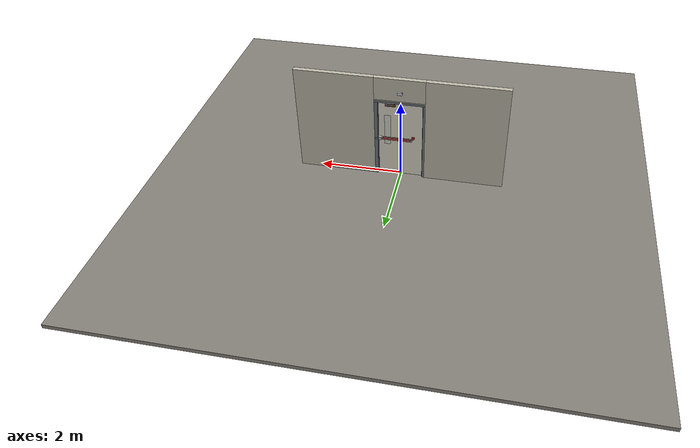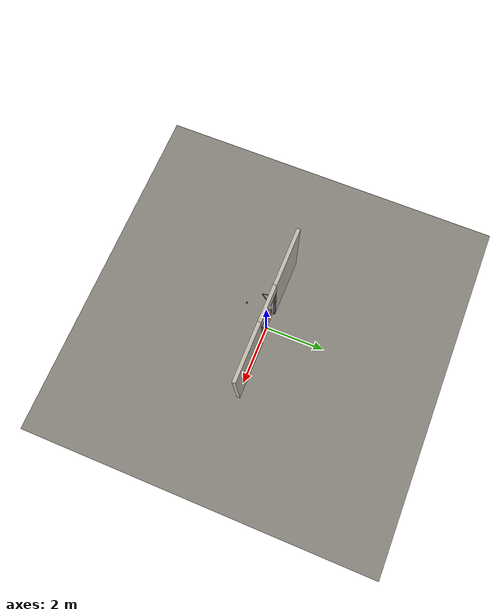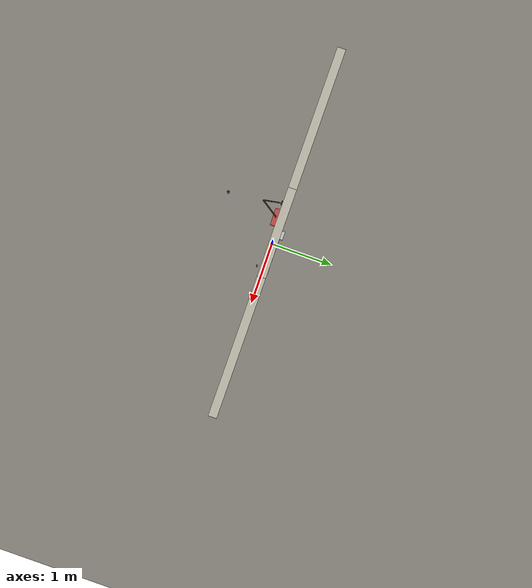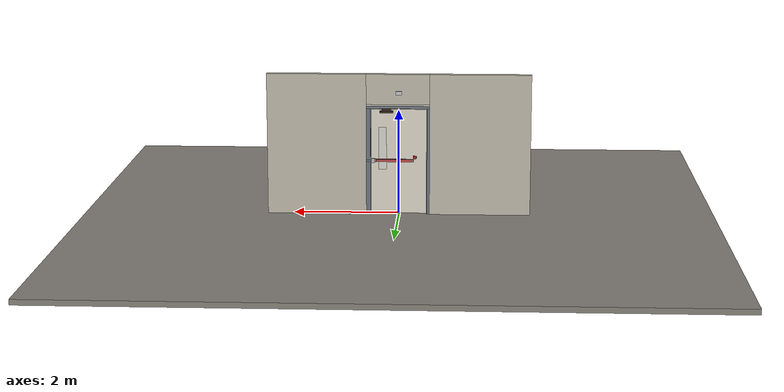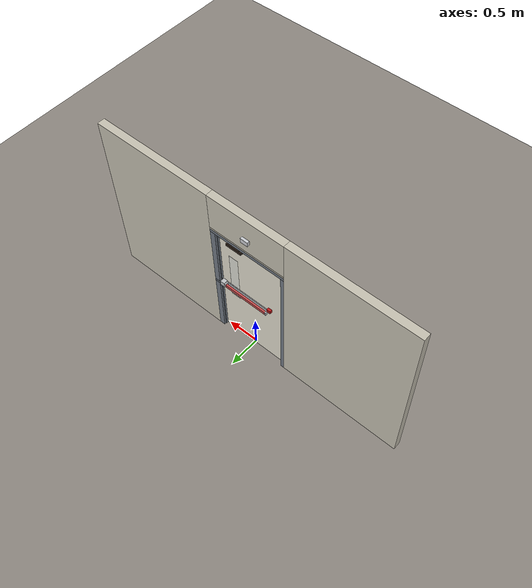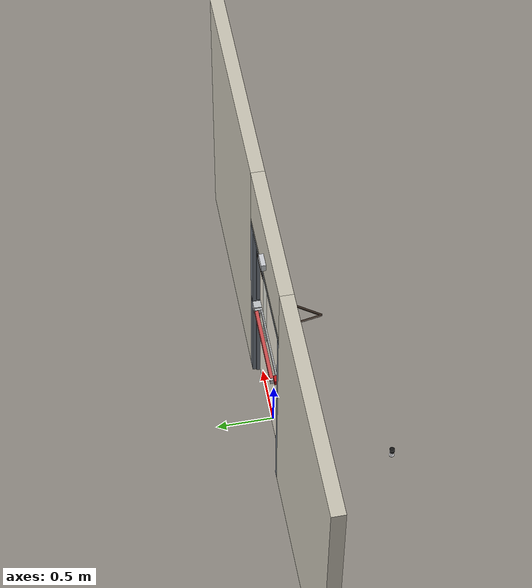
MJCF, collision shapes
<?xml version="1.0" ?>
<mujoco model="db0328_swing_single_full">
  <compiler angle="radian" meshdir="../../hardware" texturedir="../../textures" autolimits="true" inertiafromgeom="false"/>
  <option timestep="0.002" integrator="implicitfast" cone="elliptic" impratio="10" noslip_iterations="3">
    <flag multiccd="enable"/>
  </option>
  <size memory="16M"/>
  <default>
    <geom condim="4" solref="0.005 1" solimp="0.95 0.99 0.001"/>
    <joint solreflimit="0.005 1" solimplimit="0.95 0.99 0.001"/>
    <tendon solreflimit="0.005 1"/>
    <equality solref="0.002 1"/>
  </default>
  <visual>
    <headlight ambient="0.4 0.4 0.4" diffuse="0.7 0.7 0.7" specular="0.2 0.2 0.2"/>
    <quality shadowsize="4096"/>
    <map znear="0.01" zfar="60"/>
  </visual>
  <asset>
    <mesh name="closer_body_b226fdb10b" file="closer_body_b226fdb10b.obj"/>
    <mesh name="exit_sign_a6449bfa2c" file="exit_sign_a6449bfa2c.obj"/>
    <mesh name="hinge_e22b26c0c1" file="hinge_e22b26c0c1.obj"/>
    <mesh name="hinge_jamb_e1d088f8dc" file="hinge_jamb_e1d088f8dc.obj"/>
    <mesh name="pull_f8d79d6331" file="pull_f8d79d6331.obj"/>
    <mesh name="touchbar_pad_53c3bea3f4" file="touchbar_pad_53c3bea3f4.obj"/>
    <material name="mat_floor" rgba="0.55 0.53 0.5 1" specular="0.2" shininess="0.15" reflectance="0"/>
    <material name="mat_wall" rgba="0.78 0.76 0.7 1" specular="0.2" shininess="0.1" reflectance="0"/>
    <material name="mat_leaf" rgba="0.9 0.88 0.82 1" specular="0.23" shininess="0.64" reflectance="0.02"/>
    <material name="mat_glass" rgba="0.85 0.92 0.95 0.25" specular="0.2" shininess="0.95" reflectance="0.1"/>
    <material name="mat_hinge" rgba="0.65 0.66 0.68 1" specular="0.74" shininess="0.5" reflectance="0.36"/>
    <material name="mat_op_stainless" rgba="0.75 0.76 0.77 1" specular="0.8" shininess="0.65" reflectance="0.4"/>
    <material name="mat_alarm" rgba="0.75 0.1 0.1 1" specular="0.2" shininess="0.5" reflectance="0"/>
    <material name="mat_bolt" rgba="0.75 0.76 0.77 1" specular="0.8" shininess="0.65" reflectance="0.4"/>
    <material name="mat_maglock" rgba="0.22 0.17 0.13 1" specular="0.8" shininess="0.6" reflectance="0.4"/>
    <material name="mat_frame" rgba="0.45 0.48 0.52 1" specular="0.32" shininess="0.6" reflectance="0.08"/>
    <material name="mat_seal" rgba="0.1 0.1 0.1 1" specular="0.2" shininess="0.1" reflectance="0"/>
    <material name="mat_closer" rgba="0.22 0.17 0.13 1" specular="0.8" shininess="0.6" reflectance="0.4"/>
    <material name="mat_exit_sign" rgba="0.85 0.1 0.1 1" specular="0.2" shininess="0.6" reflectance="0"/>
    <material name="mat_sign_bracket" rgba="0.8 0.81 0.83 1" specular="0.8" shininess="0.6" reflectance="0.4"/>
    <material name="mat_bumper_stop" rgba="0.08 0.08 0.08 1" specular="0.2" shininess="0.1" reflectance="0"/>
    <material name="mat_stop_base" rgba="0.9 0.9 0.92 1" specular="0.8" shininess="0.9" reflectance="0.4"/>
    <texture name="skybox" type="skybox" builtin="gradient" rgb1="0.6 0.7 0.85" rgb2="0.9 0.92 0.95" width="256" height="256"/>
  </asset>
  <worldbody>
    <light name="sun" pos="1.5 -2.5 4" dir="-0.3 0.5 -0.8" directional="true" diffuse="0.8 0.8 0.8" specular="0.3 0.3 0.3" castshadow="true"/>
    <light name="fill" pos="-1.5 2.5 3" dir="0.3 -0.5 -0.7" directional="true" diffuse="0.35 0.35 0.4" castshadow="false"/>
    <camera name="robot_view" pos="0 -2.513687 1.734312" xyaxes="1 0 0 0 0.26963 0.962964" fovy="52"/>
    <camera name="far_view" pos="0 2.570688 1.734312" xyaxes="-1 0 0 0 -0.26963 0.962964" fovy="52"/>
    <camera name="iso" pos="1.932062 -2.106937 2.141063" xyaxes="0.741536 0.670913 0 -0.242917 0.268487 0.932151" fovy="46"/>
    <camera name="detail_handle" pos="0.623 -0.897 1.32" xyaxes="0.97561 0.219512 0 -0.070934 0.315262 0.94635" fovy="38"/>
    <geom name="floor" type="box" size="6 6 0.05" pos="0 0 -0.05" material="mat_floor" group="0" contype="1" conaffinity="1" friction="0.8 0.005 0.0001" density="2400"/>
    <geom name="wall_left" type="box" size="0.9565 0.0575 1.35" pos="-1.5435 0.0285 1.35" material="mat_wall" group="0" contype="1" conaffinity="1" friction="0.6 0.005 0.0001" density="800"/>
    <geom name="wall_right" type="box" size="0.9415 0.0575 1.35" pos="1.5585 0.0285 1.35" material="mat_wall" group="0" contype="1" conaffinity="1" friction="0.6 0.005 0.0001" density="800"/>
    <geom name="wall_header" type="box" size="0.602 0.0575 0.2875" pos="0.015 0.0285 2.4125" material="mat_wall" group="0" contype="1" conaffinity="1" friction="0.6 0.005 0.0001" density="800"/>
    <geom name="hinge_0_jamb" type="mesh" mesh="hinge_jamb_e1d088f8dc" pos="-0.534 -0.029 0.259" material="mat_hinge" group="1" contype="0" conaffinity="0" density="7850"/>
    <geom name="hinge_1_jamb" type="mesh" mesh="hinge_jamb_e1d088f8dc" pos="-0.534 -0.029 1.025" material="mat_hinge" group="1" contype="0" conaffinity="0" density="7850"/>
    <geom name="hinge_2_jamb" type="mesh" mesh="hinge_jamb_e1d088f8dc" pos="-0.534 -0.029 1.861" material="mat_hinge" group="1" contype="0" conaffinity="0" density="7850"/>
    <geom name="leaf_maglock_body" type="box" size="0.125 0.025 0.02" pos="0.233 0.057 1.98" material="mat_maglock" group="0" contype="1" conaffinity="1" friction="0.6 0.005 0.0001" density="2000"/>
    <geom name="leaf_maglock_bracket" type="box" size="0.09 0.025 0.0225" pos="0.233 0.057 2.0225" material="mat_maglock" group="1" contype="0" conaffinity="0" density="7850"/>
    <geom name="jamb_hinge" type="box" size="0.025 0.0575 1.0225" pos="-0.562 0.0285 1.0225" material="mat_frame" group="0" contype="1" conaffinity="1" friction="0.6 0.005 0.0001" density="300"/>
    <geom name="strike_1040_wall_n" type="box" size="0.04 0.0155 0.02" pos="0.577 0.0705 1.04" material="mat_frame" group="0" contype="1" conaffinity="1" friction="0.6 0.005 0.0001" density="300"/>
    <geom name="strike_1040_wall_p" type="box" size="0.04 0.008 0.02" pos="0.577 0.025 1.04" material="mat_frame" group="0" contype="1" conaffinity="1" friction="0.6 0.005 0.0001" density="300"/>
    <geom name="strike_1040_ramp" type="box" size="0.04 0.034482 0.02" pos="0.585281 -0.0044 1.04" quat="0.989198 0 0 0.146587" material="mat_frame" group="0" contype="1" conaffinity="1" friction="0.12 0.005 0.0001" density="300"/>
    <geom name="strike_1040_back" type="box" size="0.0285 0.011 0.02" pos="0.5885 0.044 1.04" material="mat_frame" group="0" contype="1" conaffinity="1" friction="0.6 0.005 0.0001" density="300"/>
    <geom name="jamb_strike_0" type="box" size="0.04 0.0575 0.51" pos="0.577 0.0285 0.51" material="mat_frame" group="0" contype="1" conaffinity="1" friction="0.6 0.005 0.0001" density="300"/>
    <geom name="jamb_strike_1" type="box" size="0.04 0.0575 0.4925" pos="0.577 0.0285 1.5525" material="mat_frame" group="0" contype="1" conaffinity="1" friction="0.6 0.005 0.0001" density="300"/>
    <geom name="jamb_head" type="box" size="0.602 0.0575 0.025" pos="0.015 0.0285 2.07" material="mat_frame" group="0" contype="1" conaffinity="1" friction="0.6 0.005 0.0001" density="300"/>
    <geom name="head_stud" type="box" size="0.602 0.0575 0.015" pos="0.015 0.0285 2.11" material="mat_wall" group="0" contype="1" conaffinity="1" friction="0.6 0.005 0.0001" density="500"/>
    <geom name="stop_hinge" type="box" size="0.0055 0.016 1.0225" pos="-0.5315 0.0385 1.0225" material="mat_frame" group="0" contype="1" conaffinity="1" friction="0.6 0.005 0.0001" density="300"/>
    <geom name="stop_strike" type="box" size="0.0055 0.016 0.49625" pos="0.5315 0.0385 0.49625" material="mat_frame" group="0" contype="1" conaffinity="1" friction="0.6 0.005 0.0001" density="300"/>
    <geom name="stop_strike_1" type="box" size="0.0055 0.016 0.47875" pos="0.5315 0.0385 1.56625" material="mat_frame" group="0" contype="1" conaffinity="1" friction="0.6 0.005 0.0001" density="300"/>
    <geom name="stop_head" type="box" size="0.537 0.016 0.0055" pos="0 0.0385 2.0395" material="mat_frame" group="0" contype="1" conaffinity="1" friction="0.6 0.005 0.0001" density="300"/>
    <geom name="seal_hinge" type="box" size="0.004 0.0025 1.0225" pos="-0.534 0.0245 1.0225" material="mat_seal" group="1" contype="0" conaffinity="0" density="1100"/>
    <geom name="seal_strike" type="box" size="0.004 0.0025 0.49625" pos="0.534 0.0245 0.49625" material="mat_seal" group="1" contype="0" conaffinity="0" density="1100"/>
    <geom name="seal_strike_1" type="box" size="0.004 0.0025 0.47875" pos="0.534 0.0245 1.56625" material="mat_seal" group="1" contype="0" conaffinity="0" density="1100"/>
    <geom name="seal_head" type="box" size="0.517 0.0025 0.008" pos="0 0.0245 2.033" material="mat_seal" group="1" contype="0" conaffinity="0" density="1100"/>
    <geom name="closer_bracket" type="box" size="0.03 0.012 0.014" pos="-0.437 -0.041 2.075" material="mat_closer" group="1" contype="0" conaffinity="0" density="2700"/>
    <geom name="exit_sign" type="mesh" mesh="exit_sign_a6449bfa2c" pos="0 0.15 2.345" material="mat_exit_sign" group="2" contype="0" conaffinity="0" density="500"/>
    <geom name="exit_sign_bracket" type="box" size="0.05775 0.02 0.035" pos="0 0.1055 2.345" material="mat_sign_bracket" group="2" contype="0" conaffinity="0" density="7850"/>
    <geom name="door_stop_base" type="cylinder" size="0.022 0.003" pos="-0.55 -0.93595 0.003" material="mat_stop_base" group="0" contype="1" conaffinity="1" friction="0.6 0.005 0.0001" density="7850"/>
    <geom name="door_stop_post" type="cylinder" size="0.012 0.0245" pos="-0.55 -0.93595 0.0305" material="mat_stop_base" group="0" contype="1" conaffinity="1" friction="0.6 0.005 0.0001" density="7850"/>
    <geom name="door_stop_bumper" type="cylinder" size="0.022 0.02" pos="-0.55 -0.93595 0.075" material="mat_bumper_stop" group="0" contype="1" conaffinity="1" friction="0.6 0.005 0.0001" density="1100"/>
    <site name="approach_point" pos="0 -1.5 0" quat="1 0 0 0" size="0.05" rgba="0.2 0.9 0.2 0.5" group="4"/>
    <site name="goal_point" pos="0 1.5 0" quat="1 0 0 0" size="0.05" rgba="0.2 0.9 0.2 0.5" group="4"/>
    <site name="door_plane_center" pos="0 0 1.0225" quat="1 0 0 0" size="0.02" rgba="0.2 0.9 0.2 0.5" group="4"/>
    <body name="leaf" pos="-0.537 0 0">
      <inertial pos="0.520036 -0.007539 1.153611" mass="55.7938" quat="0.519896 0.521225 0.485845 -0.471155" diaginertia="5.271129087 21.219434898 26.403968966"/>
      <joint name="leaf_hinge" type="hinge" axis="0 0 -1" pos="0.003 -0.029 0" limited="true" range="0 1.570796" solreflimit="0.02 1" damping="10.475663" frictionloss="2.406401" stiffness="13.521804" springref="-2.326613" armature="0.02"/>
      <geom name="leaf_slab" type="box" size="0.5335 0.022 1.016" pos="0.5365 0 1.025" material="mat_leaf" group="0" contype="1" conaffinity="1" friction="0.4 0.005 0.0001" density="1"/>
      <geom name="leaf_glass_0" type="box" size="0.075 0.0228 0.4064" pos="0.84763 0 1.26884" material="mat_glass" group="1" contype="0" conaffinity="0" density="1"/>
      <geom name="hinge_0" type="mesh" mesh="hinge_e22b26c0c1" pos="0.003 -0.029 0.259" material="mat_hinge" group="1" contype="0" conaffinity="0" density="7850"/>
      <geom name="hinge_1" type="mesh" mesh="hinge_e22b26c0c1" pos="0.003 -0.029 1.025" material="mat_hinge" group="1" contype="0" conaffinity="0" density="7850"/>
      <geom name="hinge_2" type="mesh" mesh="hinge_e22b26c0c1" pos="0.003 -0.029 1.861" material="mat_hinge" group="1" contype="0" conaffinity="0" density="7850"/>
      <geom name="leaf_exit_device_rail" type="box" size="0.366775 0.006 0.025" pos="0.623225 0.028 1.04" material="mat_op_stainless" group="0" contype="1" conaffinity="1" friction="0.6 0.005 0.0001" density="3000"/>
      <geom name="leaf_exit_device_rail_end_n" type="box" size="0.01 0.0325 0.025" pos="0.26645 0.0545 1.04" material="mat_op_stainless" group="0" contype="1" conaffinity="1" friction="0.6 0.005 0.0001" density="3000"/>
      <geom name="leaf_exit_device_rail_end_p" type="box" size="0.01 0.0325 0.025" pos="0.98 0.0545 1.04" material="mat_op_stainless" group="0" contype="1" conaffinity="1" friction="0.6 0.005 0.0001" density="3000"/>
      <geom name="leaf_exit_device_case" type="box" size="0.034 0.034125 0.0375" pos="1.024 0.056125 1.04" material="mat_op_stainless" group="0" contype="1" conaffinity="1" friction="0.6 0.005 0.0001" density="3000"/>
      <geom name="leaf_exit_device_alarm" type="box" size="0.03 0.02 0.025" pos="0.23145 0.042 1.1" material="mat_alarm" group="1" contype="0" conaffinity="0" density="1500"/>
      <geom name="leaf_far_pull_n" type="mesh" mesh="pull_f8d79d6331" pos="0.98 -0.022 1.04" quat="0.707107 0.707107 0 0" material="mat_op_stainless" group="1" contype="0" conaffinity="0" density="3000"/>
      <geom name="leaf_far_pull_col_n" type="capsule" size="0.0125 0.13" pos="0.98 -0.097 1.04" material="mat_op_stainless" group="3" contype="1" conaffinity="1" rgba="0.8 0.3 0.3 0.25" friction="0.7 0.01 0.0001" density="3000"/>
      <geom name="leaf_maglock_armature" type="box" size="0.09 0.005 0.02" pos="0.77 0.027 1.98" material="mat_maglock" group="1" contype="0" conaffinity="0" density="7800"/>
      <geom name="closer_body" type="mesh" mesh="closer_body_b226fdb10b" pos="0.3 -0.022 1.952" quat="0.707107 0.707107 0 0" material="mat_closer" group="1" contype="0" conaffinity="0" density="2000"/>
      <geom name="closer_body_col" type="box" size="0.12 0.04 0.03" pos="0.3 -0.062 1.952" material="mat_closer" group="3" contype="1" conaffinity="1" rgba="0.8 0.3 0.3 0.25" friction="0.6 0.005 0.0001" density="2000"/>
      <geom name="closer_pinion_shaft" type="cylinder" size="0.008 0.0615" pos="0.3 -0.064 2.0135" material="mat_closer" group="1" contype="0" conaffinity="0" density="2700"/>
      <site name="leaf_far_pull_grip_n" pos="0.98 -0.097 1.04" quat="1 0 0 0" size="0.012" rgba="0.2 0.9 0.2 0.5" group="4"/>
      <site name="leaf_edge_mid" pos="1.07 0 1.016" quat="1 0 0 0" size="0.02" rgba="0.2 0.9 0.2 0.5" group="4"/>
      <body name="leaf_exit_device" pos="0.623225 0.022 1.04">
        <inertial pos="0 0.05 0" mass="5.569155" quat="0.707107 -0.707107 0 0" diaginertia="0.001357482 0.219807588 0.220329696"/>
        <joint name="leaf_exit_device_slide" type="slide" axis="0 -1 0" limited="true" range="0 0.016" damping="165.686282" frictionloss="0.5" stiffness="1200" springref="-0.015" armature="0.15"/>
        <geom name="leaf_exit_device_pad" type="mesh" mesh="touchbar_pad_53c3bea3f4" pos="0 0 0" quat="-0.707107 0.707107 0 0" material="mat_op_stainless" group="1" contype="0" conaffinity="0" density="3000"/>
        <geom name="leaf_exit_device_pad_col" type="box" size="0.343775 0.015 0.0225" pos="0 0.05 0" material="mat_op_stainless" group="3" contype="1" conaffinity="1" rgba="0.8 0.3 0.3 0.25" friction="0.8 0.01 0.0001" density="3000"/>
        <site name="leaf_exit_device_push" pos="0 0.065 0" quat="1 0 0 0" size="0.015" rgba="0.2 0.9 0.2 0.5" group="4"/>
      </body>
      <body name="leaf_latch_bolt" pos="1.07 0.044 1.04">
        <inertial pos="-0.0055 0 0" mass="0.102826" quat="0.92388 -0.382683 0 0" diaginertia="0.000004365 0.000018287 0.000018287"/>
        <joint name="leaf_latch_bolt_slide" type="slide" axis="-1 0 0" limited="true" range="0 0.019" damping="2" frictionloss="0.3" stiffness="800" springref="-0.01" armature="0.1"/>
        <geom name="leaf_latch_bolt_capsule" type="capsule" size="0.0095 0.015" pos="-0.0055 0 0" quat="0.707107 0 0.707107 0" material="mat_bolt" group="0" contype="1" conaffinity="1" friction="0.2 0.005 0.0001" density="8500"/>
      </body>
      <body name="closer_arm_main" pos="0.3 -0.064 2.075" quat="0.472212 0 0 -0.881485">
        <inertial pos="0.14 0 0" mass="0.12096" quat="1 0 0 0" diaginertia="0.000003588 0.00079128 0.000792852"/>
        <joint name="closer_pinion" type="hinge" axis="0 0 1" limited="false" damping="0.01" armature="0.002"/>
        <geom name="closer_arm_main_geom" type="box" size="0.14 0.008 0.005" pos="0.14 0 0" material="mat_closer" group="1" contype="0" conaffinity="0" density="2700"/>
        <body name="closer_arm_fore" pos="0.28 0 0" quat="-0.371222 0 0 0.928544">
          <inertial pos="0.128088 0 0" mass="0.076531" quat="1 0 0 0" diaginertia="0.000001771 0.000437665 0.000438201"/>
          <joint name="closer_elbow" type="hinge" axis="0 0 1" limited="false" damping="0.01" armature="0.002"/>
          <geom name="closer_arm_fore_geom" type="box" size="0.1125 0.007 0.004" pos="0.1125 0 0" material="mat_closer" group="1" contype="0" conaffinity="0" density="2700"/>
          <geom name="closer_fore_neck" type="box" size="0.0175 0.003 0.003" pos="0.2425 0 0" material="mat_closer" group="1" contype="0" conaffinity="0" density="2700"/>
          <geom name="closer_fore_pivot" type="cylinder" size="0.005 0.012" pos="0.26 0 0" material="mat_closer" group="1" contype="0" conaffinity="0" density="2700"/>
        </body>
      </body>
    </body>
  </worldbody>
  <tendon>
    <fixed name="leaf_latch_bolt_coupling" limited="true" range="0 10">
      <joint joint="leaf_latch_bolt_slide" coef="1"/>
      <joint joint="leaf_exit_device_slide" coef="-1.357143"/>
    </fixed>
  </tendon>
  <equality>
    <weld name="leaf_maglock" body1="leaf" body2="world" active="true"/>
    <connect name="closer_arm_connect" body1="closer_arm_fore" body2="world" anchor="0.26 0 0" active="true"/>
  </equality>
  <contact>
    <exclude body1="closer_arm_main" body2="leaf"/>
    <exclude body1="closer_arm_fore" body2="leaf"/>
    <exclude body1="closer_arm_main" body2="closer_arm_fore"/>
  </contact>
  <sensor>
    <jointpos name="leaf_hinge_pos" joint="leaf_hinge"/>
    <jointvel name="leaf_hinge_vel" joint="leaf_hinge"/>
    <jointpos name="leaf_exit_device_slide_pos" joint="leaf_exit_device_slide"/>
    <jointvel name="leaf_exit_device_slide_vel" joint="leaf_exit_device_slide"/>
    <jointpos name="leaf_latch_bolt_slide_pos" joint="leaf_latch_bolt_slide"/>
    <jointvel name="leaf_latch_bolt_slide_vel" joint="leaf_latch_bolt_slide"/>
  </sensor>
</mujoco>
